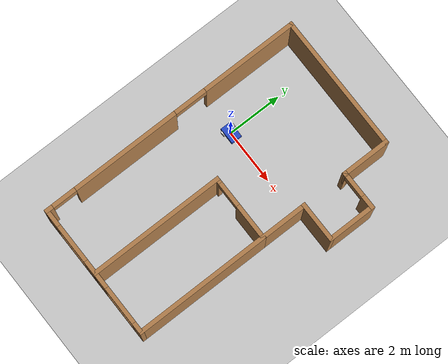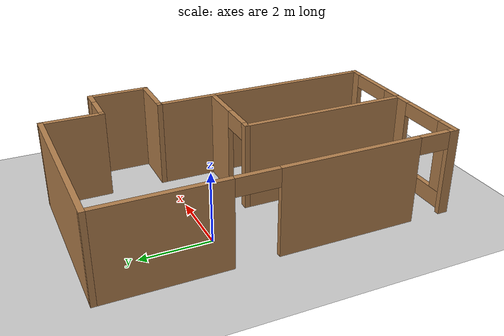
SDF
<sdf version="1.7">
 <world name="default">
  <light name="sun" type="directional">
   <pose>0 0 10 0 -0 0</pose>
   <diffuse>0.8 0.8 0.8 1</diffuse>
   <specular>0.2 0.2 0.2 1</specular>
   <attenuation>
    <range>1000</range>
    <constant>0.9</constant>
    <linear>0.01</linear>
    <quadratic>0.001</quadratic>
   </attenuation>
   <direction>-0.5 0.1 -0.9</direction>
   <spot><inner_angle>0</inner_angle><outer_angle>0</outer_angle><falloff>0</falloff></spot>
  </light>
  <model name="ground_plane">
   <static>1</static>
   <link name="link">
    <collision name="collision">
     <geometry><plane><normal>0 0 1</normal><size>100 100</size></plane></geometry>
     <surface>
      <contact><collide_bitmask>65535</collide_bitmask></contact>
      <friction><ode><mu>100</mu><mu2>50</mu2></ode></friction>
     </surface>
    </collision>
    <visual name="visual">
     <cast_shadows>0</cast_shadows>
     <geometry><plane><normal>0 0 1</normal><size>100 100</size></plane></geometry>
     <material>
      <script><uri>file://media/materials/scripts/gazebo.material</uri><name>Gazebo/Grey</name></script>
     </material>
    </visual>
   </link>
  </model>
  <gravity>0 0 -9.8</gravity>
  <magnetic_field>6e-06 2.3e-05 -4.2e-05</magnetic_field>
  <atmosphere type="adiabatic"/>
  <physics type="ode">
   <max_step_size>0.001</max_step_size>
   <real_time_factor>1</real_time_factor>
   <real_time_update_rate>1000</real_time_update_rate>
  </physics>
  <scene><ambient>0.4 0.4 0.4 1</ambient><background>0.7 0.7 0.7 1</background><shadows>1</shadows></scene>
  <audio><device>default</device></audio>
  <spherical_coordinates>
   <surface_model>EARTH_WGS84</surface_model>
   <latitude_deg>0</latitude_deg>
   <longitude_deg>0</longitude_deg>
   <elevation>0</elevation>
   <heading_deg>0</heading_deg>
  </spherical_coordinates>
  <model name="tinybot">
   <link name="base_footprint">
    <inertial>
     <pose>0.018182 0 0.186364 0 -0 0</pose>
     <mass>5.5</mass>
     <inertia>
      <ixx>0.678894</ixx>
      <ixy>0</ixy>
      <ixz>0.0136364</ixz>
      <iyy>0.897076</iyy>
      <iyz>0</iyz>
      <izz>0.353515</izz>
     </inertia>
    </inertial>
    <collision name="base_footprint_fixed_joint_lump__base_link_collision">
     <pose>0 0 0.2 0 -0 0</pose>
     <geometry><box><size>0.6 0.4 0.2</size></box></geometry>
    </collision>
    <collision name="base_footprint_fixed_joint_lump__casterWheel_collision_1">
     <pose>0.2 0 0.05 0 -0 0</pose>
     <geometry><sphere><radius>0.05</radius></sphere></geometry>
     <surface><friction><ode><mu>0.1</mu><mu2>0.1</mu2></ode></friction></surface>
    </collision>
    <visual name="base_footprint_fixed_joint_lump__base_link_visual">
     <pose>0 0 0.2 0 -0 0</pose>
     <geometry><box><size>0.6 0.4 0.2</size></box></geometry>
     <material>
      <script><name>Gazebo/Blue</name><uri>file://media/materials/scripts/gazebo.material</uri></script>
     </material>
    </visual>
    <visual name="base_footprint_fixed_joint_lump__casterWheel_visual_1">
     <pose>0.2 0 0.05 0 -0 0</pose>
     <geometry><sphere><radius>0.05</radius></sphere></geometry>
     <material>
      <script><name>Gazebo/White</name><uri>file://media/materials/scripts/gazebo.material</uri></script>
     </material>
    </visual>
   </link>
   <joint name="base_leftWheel_joint" type="revolute">
    <pose relative_to="base_footprint">-0.15 0.225 0.1 0 -0 0</pose>
    <parent>base_footprint</parent>
    <child>leftWheel_link</child>
    <axis>
     <xyz>0 1 0</xyz>
     <limit><lower>-1e+16</lower><upper>1e+16</upper></limit>
     <dynamics><spring_reference>0</spring_reference><spring_stiffness>0</spring_stiffness></dynamics>
    </axis>
   </joint>
   <link name="leftWheel_link">
    <pose relative_to="base_leftWheel_joint">0 0 0 0 -0 0</pose>
    <inertial>
     <pose>0 0 0 1.5708 -0 0</pose>
     <mass>1</mass>
     <inertia><ixx>0.0108333</ixx><ixy>0</ixy><ixz>0</ixz><iyy>0.0108333</iyy><iyz>0</iyz><izz>0.02</izz></inertia>
    </inertial>
    <collision name="leftWheel_link_collision">
     <pose>0 0 0 1.5708 -0 0</pose>
     <geometry><cylinder><length>0.05</length><radius>0.1</radius></cylinder></geometry>
    </collision>
    <visual name="leftWheel_link_visual">
     <pose>0 0 0 1.5708 -0 0</pose>
     <geometry><cylinder><length>0.05</length><radius>0.1</radius></cylinder></geometry>
     <material>
      <script><name>Gazebo/White</name><uri>file://media/materials/scripts/gazebo.material</uri></script>
     </material>
    </visual>
   </link>
   <joint name="base_rightWheel_joint" type="revolute">
    <pose relative_to="base_footprint">-0.15 -0.225 0.1 0 -0 0</pose>
    <parent>base_footprint</parent>
    <child>rightWheel_link</child>
    <axis>
     <xyz>0 1 0</xyz>
     <limit><lower>-1e+16</lower><upper>1e+16</upper></limit>
     <dynamics><spring_reference>0</spring_reference><spring_stiffness>0</spring_stiffness></dynamics>
    </axis>
   </joint>
   <link name="rightWheel_link">
    <pose relative_to="base_rightWheel_joint">0 0 0 0 -0 0</pose>
    <inertial>
     <pose>0 0 0 1.5708 -0 0</pose>
     <mass>1</mass>
     <inertia><ixx>0.0108333</ixx><ixy>0</ixy><ixz>0</ixz><iyy>0.0108333</iyy><iyz>0</iyz><izz>0.02</izz></inertia>
    </inertial>
    <collision name="rightWheel_link_collision">
     <pose>0 0 0 1.5708 -0 0</pose>
     <geometry><cylinder><length>0.05</length><radius>0.1</radius></cylinder></geometry>
    </collision>
    <visual name="rightWheel_link_visual">
     <pose>0 0 0 1.5708 -0 0</pose>
     <geometry><cylinder><length>0.05</length><radius>0.1</radius></cylinder></geometry>
     <material>
      <script><name>Gazebo/White</name><uri>file://media/materials/scripts/gazebo.material</uri></script>
     </material>
    </visual>
   </link>
   <static>0</static>
   <plugin name="diff_drive_controller" filename="libgazebo_ros_diff_drive.so">
    <update_rate>50</update_rate>
    <left_joint>base_leftWheel_joint</left_joint>
    <right_joint>base_rightWheel_joint</right_joint>
    <wheel_separation>0.45</wheel_separation>
    <wheel_diameter>0.2</wheel_diameter>
    <publish_odom>1</publish_odom>
    <publish_odom_tf>1</publish_odom_tf>
    <publish_wheel_tf>1</publish_wheel_tf>
    <odometry_topic>odom</odometry_topic>
    <odometry_frame>odom</odometry_frame>
    <robot_base_frame>base_footprint</robot_base_frame>
   </plugin>
   <pose>0.027322 0.001665 1e-06 0 -5e-06 -0.00586</pose>
  </model>
  <model name="Home">
   <pose>1.84917 -1.48427 0 0 -0 0</pose>
   <link name="Wall_10">
    <collision name="Wall_10_Collision">
     <geometry><box><size>1.5 0.15 2.5</size></box></geometry>
     <pose>0 0 1.25 0 -0 0</pose>
    </collision>
    <visual name="Wall_10_Visual">
     <pose>0 0 1.25 0 -0 0</pose>
     <geometry><box><size>1.5 0.15 2.5</size></box></geometry>
     <material>
      <script><uri>file://media/materials/scripts/gazebo.material</uri><name>Gazebo/Wood</name></script>
      <ambient>1 1 1 1</ambient>
     </material>
     <meta><layer>0</layer></meta>
    </visual>
    <pose>2.425 1.6 0 0 -0 3.14159</pose>
   </link>
   <link name="Wall_11">
    <collision name="Wall_11_Collision">
     <geometry><box><size>1.8 0.15 2.5</size></box></geometry>
     <pose>0 0 1.25 0 -0 0</pose>
    </collision>
    <visual name="Wall_11_Visual">
     <pose>0 0 1.25 0 -0 0</pose>
     <geometry><box><size>1.8 0.15 2.5</size></box></geometry>
     <material>
      <script><uri>file://media/materials/scripts/gazebo.material</uri><name>Gazebo/Wood</name></script>
      <ambient>1 1 1 1</ambient>
     </material>
     <meta><layer>0</layer></meta>
    </visual>
    <pose>1.75 0.775 0 0 -0 -1.5708</pose>
   </link>
   <link name="Wall_2">
    <collision name="Wall_2_Collision">
     <geometry><box><size>5 0.15 2.5</size></box></geometry>
     <pose>0 0 1.25 0 -0 0</pose>
    </collision>
    <visual name="Wall_2_Visual">
     <pose>0 0 1.25 0 -0 0</pose>
     <geometry><box><size>5 0.15 2.5</size></box></geometry>
     <material>
      <script><uri>file://media/materials/scripts/gazebo.material</uri><name>Gazebo/Wood</name></script>
      <ambient>1 1 1 1</ambient>
     </material>
     <meta><layer>0</layer></meta>
    </visual>
    <pose>-0.675 4.9 0 0 -0 0</pose>
   </link>
   <link name="Wall_20">
    <pose>-3.1 0 0 0 -0 -1.5708</pose>
    <visual name="Wall_20_Visual_0">
     <pose>-3.194 0 1.25 0 -0 0</pose>
     <geometry><box><size>3.562 0.15 2.5</size></box></geometry>
     <material>
      <script><uri>file://media/materials/scripts/gazebo.material</uri><name>Gazebo/Wood</name></script>
      <ambient>1 1 1 1</ambient>
     </material>
     <meta><layer>0</layer></meta>
    </visual>
    <collision name="Wall_20_Collision_0">
     <geometry><box><size>3.562 0.15 2.5</size></box></geometry>
     <pose>-3.194 0 1.25 0 -0 0</pose>
    </collision>
    <visual name="Wall_20_Visual_1">
     <pose>1.78318 0 1.25 0 -0 0</pose>
     <geometry><box><size>3.99237 0.15 2.5</size></box></geometry>
     <material>
      <script><uri>file://media/materials/scripts/gazebo.material</uri><name>Gazebo/Wood</name></script>
      <ambient>1 1 1 1</ambient>
     </material>
     <meta><layer>0</layer></meta>
    </visual>
    <collision name="Wall_20_Collision_1">
     <geometry><box><size>3.99237 0.15 2.5</size></box></geometry>
     <pose>1.78318 0 1.25 0 -0 0</pose>
    </collision>
    <visual name="Wall_20_Visual_2">
     <pose>4.82718 0 1.25 0 -0 0</pose>
     <geometry><box><size>0.295631 0.15 2.5</size></box></geometry>
     <material>
      <script><uri>file://media/materials/scripts/gazebo.material</uri><name>Gazebo/Wood</name></script>
      <ambient>1 1 1 1</ambient>
     </material>
     <meta><layer>0</layer></meta>
    </visual>
    <collision name="Wall_20_Collision_2">
     <geometry><box><size>0.295631 0.15 2.5</size></box></geometry>
     <pose>4.82718 0 1.25 0 -0 0</pose>
    </collision>
    <visual name="Wall_20_Visual_3">
     <pose>-0.813004 0 2.25 0 -0 0</pose>
     <geometry><box><size>1.2 0.15 0.5</size></box></geometry>
     <material>
      <script><uri>file://media/materials/scripts/gazebo.material</uri><name>Gazebo/Wood</name></script>
      <ambient>1 1 1 1</ambient>
     </material>
     <meta><layer>0</layer></meta>
    </visual>
    <collision name="Wall_20_Collision_3">
     <geometry><box><size>1.2 0.15 0.5</size></box></geometry>
     <pose>-0.813004 0 2.25 0 -0 0</pose>
    </collision>
    <visual name="Wall_20_Visual_4">
     <pose>4.22937 0 2.25 0 -0 0</pose>
     <geometry><box><size>0.9 0.15 0.5</size></box></geometry>
     <material>
      <script><uri>file://media/materials/scripts/gazebo.material</uri><name>Gazebo/Wood</name></script>
      <ambient>1 1 1 1</ambient>
     </material>
     <meta><layer>0</layer></meta>
    </visual>
    <collision name="Wall_20_Collision_4">
     <geometry><box><size>0.9 0.15 0.5</size></box></geometry>
     <pose>4.22937 0 2.25 0 -0 0</pose>
    </collision>
   </link>
   <link name="Wall_29">
    <collision name="Wall_29_Collision">
     <geometry><box><size>5 0.15 2.5</size></box></geometry>
     <pose>0 0 1.25 0 -0 0</pose>
    </collision>
    <visual name="Wall_29_Visual">
     <pose>0 0 1.25 0 -0 0</pose>
     <geometry><box><size>5 0.15 2.5</size></box></geometry>
     <material>
      <script><uri>file://media/materials/scripts/gazebo.material</uri><name>Gazebo/Wood</name></script>
      <ambient>1 1 1 1</ambient>
     </material>
     <meta><layer>0</layer></meta>
    </visual>
    <pose>1.75 -2.475 0 0 -0 -1.5708</pose>
   </link>
   <link name="Wall_30">
    <pose>-0.675 -4.9 0 0 -0 3.14159</pose>
    <visual name="Wall_30_Visual_0">
     <pose>-2.28128 0 1.25 0 -0 0</pose>
     <geometry><box><size>0.437446 0.15 2.5</size></box></geometry>
     <material>
      <script><uri>file://media/materials/scripts/gazebo.material</uri><name>Gazebo/Wood</name></script>
      <ambient>1 1 1 1</ambient>
     </material>
     <meta><layer>0</layer></meta>
    </visual>
    <collision name="Wall_30_Collision_0">
     <geometry><box><size>0.437446 0.15 2.5</size></box></geometry>
     <pose>-2.28128 0 1.25 0 -0 0</pose>
    </collision>
    <visual name="Wall_30_Visual_1">
     <pose>0.218723 0 0.25 0 -0 0</pose>
     <geometry><box><size>4.56255 0.15 0.5</size></box></geometry>
     <material>
      <script><uri>file://media/materials/scripts/gazebo.material</uri><name>Gazebo/Wood</name></script>
      <ambient>1 1 1 1</ambient>
     </material>
     <meta><layer>0</layer></meta>
    </visual>
    <collision name="Wall_30_Collision_1">
     <geometry><box><size>4.56255 0.15 0.5</size></box></geometry>
     <pose>0.218723 0 0.25 0 -0 0</pose>
    </collision>
    <visual name="Wall_30_Visual_2">
     <pose>-0.125066 0 1.5 0 -0 0</pose>
     <geometry><box><size>1.07498 0.15 2</size></box></geometry>
     <material>
      <script><uri>file://media/materials/scripts/gazebo.material</uri><name>Gazebo/Wood</name></script>
      <ambient>1 1 1 1</ambient>
     </material>
     <meta><layer>0</layer></meta>
    </visual>
    <collision name="Wall_30_Collision_2">
     <geometry><box><size>1.07498 0.15 2</size></box></geometry>
     <pose>-0.125066 0 1.5 0 -0 0</pose>
    </collision>
    <visual name="Wall_30_Visual_3">
     <pose>2.15621 0 1.5 0 -0 0</pose>
     <geometry><box><size>0.687579 0.15 2</size></box></geometry>
     <material>
      <script><uri>file://media/materials/scripts/gazebo.material</uri><name>Gazebo/Wood</name></script>
      <ambient>1 1 1 1</ambient>
     </material>
     <meta><layer>0</layer></meta>
    </visual>
    <collision name="Wall_30_Collision_3">
     <geometry><box><size>0.687579 0.15 2</size></box></geometry>
     <pose>2.15621 0 1.5 0 -0 0</pose>
    </collision>
    <visual name="Wall_30_Visual_4">
     <pose>-1.36255 0 2.3 0 -0 0</pose>
     <geometry><box><size>1.4 0.15 0.4</size></box></geometry>
     <material>
      <script><uri>file://media/materials/scripts/gazebo.material</uri><name>Gazebo/Wood</name></script>
      <ambient>1 1 1 1</ambient>
     </material>
     <meta><layer>0</layer></meta>
    </visual>
    <collision name="Wall_30_Collision_4">
     <geometry><box><size>1.4 0.15 0.4</size></box></geometry>
     <pose>-1.36255 0 2.3 0 -0 0</pose>
    </collision>
    <visual name="Wall_30_Visual_5">
     <pose>1.11242 0 2.3 0 -0 0</pose>
     <geometry><box><size>1.4 0.15 0.4</size></box></geometry>
     <material>
      <script><uri>file://media/materials/scripts/gazebo.material</uri><name>Gazebo/Wood</name></script>
      <ambient>1 1 1 1</ambient>
     </material>
     <meta><layer>0</layer></meta>
    </visual>
    <collision name="Wall_30_Collision_5">
     <geometry><box><size>1.4 0.15 0.4</size></box></geometry>
     <pose>1.11242 0 2.3 0 -0 0</pose>
    </collision>
   </link>
   <link name="Wall_4">
    <collision name="Wall_4_Collision">
     <geometry><box><size>1.8 0.15 2.5</size></box></geometry>
     <pose>0 0 1.25 0 -0 0</pose>
    </collision>
    <visual name="Wall_4_Visual">
     <pose>0 0 1.25 0 -0 0</pose>
     <geometry><box><size>1.8 0.15 2.5</size></box></geometry>
     <material>
      <script><uri>file://media/materials/scripts/gazebo.material</uri><name>Gazebo/Wood</name></script>
      <ambient>1 1 1 1</ambient>
     </material>
     <meta><layer>0</layer></meta>
    </visual>
    <pose>1.75 4.075 0 0 -0 -1.5708</pose>
   </link>
   <link name="Wall_44">
    <pose>0.575 -0.05 0 0 -0 3.14159</pose>
    <visual name="Wall_44_Visual_0">
     <pose>-0.570883 0 1.25 0 -0 0</pose>
     <geometry><box><size>1.35823 0.15 2.5</size></box></geometry>
     <material>
      <script><uri>file://media/materials/scripts/gazebo.material</uri><name>Gazebo/Wood</name></script>
      <ambient>1 1 1 1</ambient>
     </material>
     <meta><layer>0</layer></meta>
    </visual>
    <collision name="Wall_44_Collision_0">
     <geometry><box><size>1.35823 0.15 2.5</size></box></geometry>
     <pose>-0.570883 0 1.25 0 -0 0</pose>
    </collision>
    <visual name="Wall_44_Visual_1">
     <pose>1.12912 0 1.25 0 -0 0</pose>
     <geometry><box><size>0.241766 0.15 2.5</size></box></geometry>
     <material>
      <script><uri>file://media/materials/scripts/gazebo.material</uri><name>Gazebo/Wood</name></script>
      <ambient>1 1 1 1</ambient>
     </material>
     <meta><layer>0</layer></meta>
    </visual>
    <collision name="Wall_44_Collision_1">
     <geometry><box><size>0.241766 0.15 2.5</size></box></geometry>
     <pose>1.12912 0 1.25 0 -0 0</pose>
    </collision>
    <visual name="Wall_44_Visual_2">
     <pose>0.558234 0 2.25 0 -0 0</pose>
     <geometry><box><size>0.9 0.15 0.5</size></box></geometry>
     <material>
      <script><uri>file://media/materials/scripts/gazebo.material</uri><name>Gazebo/Wood</name></script>
      <ambient>1 1 1 1</ambient>
     </material>
     <meta><layer>0</layer></meta>
    </visual>
    <collision name="Wall_44_Collision_2">
     <geometry><box><size>0.9 0.15 0.5</size></box></geometry>
     <pose>0.558234 0 2.25 0 -0 0</pose>
    </collision>
   </link>
   <link name="Wall_45">
    <collision name="Wall_45_Collision">
     <geometry><box><size>5 0.15 2.5</size></box></geometry>
     <pose>0 0 1.25 0 -0 0</pose>
    </collision>
    <visual name="Wall_45_Visual">
     <pose>0 0 1.25 0 -0 0</pose>
     <geometry><box><size>5 0.15 2.5</size></box></geometry>
     <material>
      <script><uri>file://media/materials/scripts/gazebo.material</uri><name>Gazebo/Wood</name></script>
      <ambient>1 1 1 1</ambient>
     </material>
     <meta><layer>0</layer></meta>
    </visual>
    <pose>-0.6 -2.475 0 0 -0 -1.5708</pose>
   </link>
   <link name="Wall_6">
    <pose>2.425 3.25 0 0 -0 0</pose>
    <visual name="Wall_6_Visual_0">
     <pose>-0.660927 0 1.25 0 -0 0</pose>
     <geometry><box><size>0.178147 0.15 2.5</size></box></geometry>
     <material>
      <script><uri>file://media/materials/scripts/gazebo.material</uri><name>Gazebo/Wood</name></script>
      <ambient>1 1 1 1</ambient>
     </material>
     <meta><layer>0</layer></meta>
    </visual>
    <collision name="Wall_6_Collision_0">
     <geometry><box><size>0.178147 0.15 2.5</size></box></geometry>
     <pose>-0.660927 0 1.25 0 -0 0</pose>
    </collision>
    <visual name="Wall_6_Visual_1">
     <pose>0.489073 0 1.25 0 -0 0</pose>
     <geometry><box><size>0.521853 0.15 2.5</size></box></geometry>
     <material>
      <script><uri>file://media/materials/scripts/gazebo.material</uri><name>Gazebo/Wood</name></script>
      <ambient>1 1 1 1</ambient>
     </material>
     <meta><layer>0</layer></meta>
    </visual>
    <collision name="Wall_6_Collision_1">
     <geometry><box><size>0.521853 0.15 2.5</size></box></geometry>
     <pose>0.489073 0 1.25 0 -0 0</pose>
    </collision>
    <visual name="Wall_6_Visual_2">
     <pose>-0.171853 0 2.25 0 -0 0</pose>
     <geometry><box><size>0.8 0.15 0.5</size></box></geometry>
     <material>
      <script><uri>file://media/materials/scripts/gazebo.material</uri><name>Gazebo/Wood</name></script>
      <ambient>1 1 1 1</ambient>
     </material>
     <meta><layer>0</layer></meta>
    </visual>
    <collision name="Wall_6_Collision_2">
     <geometry><box><size>0.8 0.15 0.5</size></box></geometry>
     <pose>-0.171853 0 2.25 0 -0 0</pose>
    </collision>
   </link>
   <link name="Wall_8">
    <collision name="Wall_8_Collision">
     <geometry><box><size>1.8 0.15 2.5</size></box></geometry>
     <pose>0 0 1.25 0 -0 0</pose>
    </collision>
    <visual name="Wall_8_Visual">
     <pose>0 0 1.25 0 -0 0</pose>
     <geometry><box><size>1.8 0.15 2.5</size></box></geometry>
     <material>
      <script><uri>file://media/materials/scripts/gazebo.material</uri><name>Gazebo/Wood</name></script>
      <ambient>1 1 1 1</ambient>
     </material>
     <meta><layer>0</layer></meta>
    </visual>
    <pose>3.1 2.425 0 0 -0 -1.5708</pose>
   </link>
   <static>1</static>
  </model>
 </world>
</sdf>
